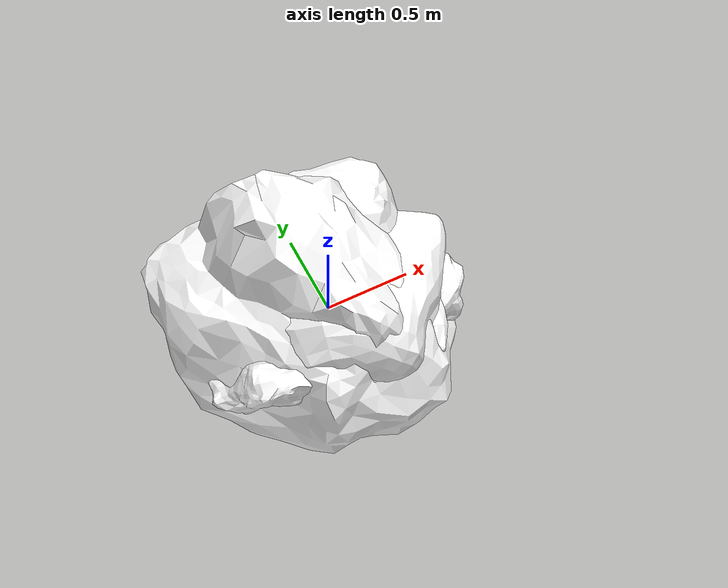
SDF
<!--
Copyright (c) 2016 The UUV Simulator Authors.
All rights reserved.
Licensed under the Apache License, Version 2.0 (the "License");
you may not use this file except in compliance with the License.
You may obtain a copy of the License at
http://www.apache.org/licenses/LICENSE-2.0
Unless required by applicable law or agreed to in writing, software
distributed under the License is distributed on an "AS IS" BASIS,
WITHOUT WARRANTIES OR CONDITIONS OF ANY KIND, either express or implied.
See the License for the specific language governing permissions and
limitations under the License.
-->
<sdf version="1.4">
 <world name="oceans_waves">
  <physics name="default_physics" default="true" type="ode">
   <max_step_size>0.002</max_step_size>
   <real_time_factor>1</real_time_factor>
   <real_time_update_rate>500</real_time_update_rate>
  </physics>
  <scene><ambient>0.01 0.01 0.01 1.0</ambient><shadows>1</shadows></scene>
  <gravity>0 0 -10</gravity>
  <spherical_coordinates>
   <longitude_deg>76.4334063</longitude_deg>
   <latitude_deg>-40.8458253</latitude_deg>
  </spherical_coordinates>
  <light type="directional" name="sun1">
   <pose>50 0 150 0 0 0</pose>
   <diffuse>1 1 1 1</diffuse>
   <specular>.1 .1 .1 1</specular>
   <direction>0.3 0.3 -1</direction>
   <cast_shadows>false</cast_shadows>
  </light>
  <light type="directional" name="sun_diffuse">
   <pose>-50 0 -150 0 0 0</pose>
   <diffuse>0.6 0.6 0.6 1</diffuse>
   <specular>0 0 0 1</specular>
   <direction>-0.3 -0.3 -1</direction>
   <cast_shadows>false</cast_shadows>
  </light>
  <include><name>rock1</name><uri>model://Rock01</uri></include>
  <include><name>rock2</name><uri>model://Rock02</uri></include>
  <include><name>rock3</name><uri>model://Rock03</uri></include>
  <include><name>rock4</name><uri>model://Rock04</uri></include>
  <include><name>rock5</name><uri>model://Rock05</uri></include>
  <include><name>rock6</name><uri>model://Rock06</uri></include>
  <include><name>rock7</name><uri>model://Rock07</uri></include>
  <plugin name="sc_interface" filename="libuuv_sc_ros_interface_plugin.so"/>
  <plugin name="data_generation_plugin" filename="libdata_generation_plugin.so"/>
 </world>
</sdf>

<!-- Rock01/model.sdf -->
<sdf version="1.6">
  <model name="Rock01">
    <static>true</static>
    <link name="base_link">
      <visual name= "Rock01_visual">
        <geometry>
          <mesh>
            <uri>model://Rock01/meshes/Rock01.dae</uri>
            <submesh>
              <name>Rock01</name>
              <center>false</center>
            </submesh>
          </mesh>
        </geometry>
        <material>
          <diffuse>1.0 1.0 1.0</diffuse>
          <specular>1.0 1.0 1.0</specular>
          <pbr>
            <metal>
              <albedo_map>model://Rock01/materials/textures/Rock_Albedo.png</albedo_map>
              <normal_map>model://Rock01/materials/textures/Rock_Normal.png</normal_map>
              <roughness_map>model://Rock01/materials/textures/Rock_Roughness.png</roughness_map>
            </metal>
          </pbr>
          <!-- fallback to script if no PBR support-->
          <script>
            <uri>model://Rock01/materials/scripts/</uri>
            <uri>model://Rock01/materials/textures/</uri>
            <name>UrbanTile/Rock_Diffuse</name>
          </script>
        </material>
      </visual>
      <collision name="collision">
        <geometry>
          <mesh>
            <pose>0 0 0 0 0 0</pose>
            <uri>model://Rock01/meshes/Rock01.dae</uri>
          </mesh>
        </geometry>
      </collision>
    </link>
  </model>
</sdf>

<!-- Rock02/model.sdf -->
<sdf version="1.6">
  <model name="Rock02">
    <static>true</static>
    <link name="base_link">
      <visual name= "Rock02_visual">
        <geometry>
          <mesh>
            <uri>model://Rock02/meshes/Rock02.dae</uri>
            <submesh>
              <name>Rock02</name>
              <center>false</center>
            </submesh>
          </mesh>
        </geometry>
        <material>
          <diffuse>1.0 1.0 1.0</diffuse>
          <specular>1.0 1.0 1.0</specular>
          <pbr>
            <metal>
              <albedo_map>model://Rock02/materials/textures/Rock_Albedo.png</albedo_map>
              <normal_map>model://Rock02/materials/textures/Rock_Normal.png</normal_map>
              <roughness_map>model://Rock02/materials/textures/Rock_Roughness.png</roughness_map>
            </metal>
          </pbr>
          <!-- fallback to script if no PBR support-->
          <script>
            <uri>model://Rock02/materials/scripts/</uri>
            <uri>model://Rock02/materials/textures/</uri>
            <name>UrbanTile/Rock_Diffuse</name>
          </script>
        </material>
      </visual>
      <collision name="collision">
        <geometry>
          <mesh>
            <pose>0 0 0 0 0 0</pose>
            <uri>model://Rock02/meshes/Rock02.dae</uri>
          </mesh>
        </geometry>
      </collision>
    </link>
  </model>
</sdf>

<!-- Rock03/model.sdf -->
<sdf version="1.6">
  <model name="Rock03">
    <static>true</static>
    <link name="base_link">
      <visual name= "Rock03_visual">
        <geometry>
          <mesh>
            <uri>model://Rock03/meshes/Rock03.dae</uri>
            <submesh>
              <name>Rock03</name>
              <center>false</center>
            </submesh>
          </mesh>
        </geometry>
        <material>
          <diffuse>1.0 1.0 1.0</diffuse>
          <specular>1.0 1.0 1.0</specular>
          <pbr>
            <metal>
              <albedo_map>model://Rock03/materials/textures/Rock_Albedo.png</albedo_map>
              <normal_map>model://Rock03/materials/textures/Rock_Normal.png</normal_map>
              <roughness_map>model://Rock03/materials/textures/Rock_Roughness.png</roughness_map>
            </metal>
          </pbr>
          <!-- fallback to script if no PBR support-->
          <script>
            <uri>model://Rock03/materials/scripts/</uri>
            <uri>model://Rock03/materials/textures/</uri>
            <name>UrbanTile/Rock_Diffuse</name>
          </script>
        </material>
      </visual>
      <collision name="collision">
        <geometry>
          <mesh>
            <pose>0 0 0 0 0 0</pose>
            <uri>model://Rock03/meshes/Rock03.dae</uri>
          </mesh>
        </geometry>
      </collision>
    </link>
  </model>
</sdf>

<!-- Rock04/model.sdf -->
<sdf version="1.6">
  <model name="Rock04">
    <static>true</static>
    <link name="base_link">
      <visual name= "Rock04_visual">
        <geometry>
          <mesh>
            <uri>model://Rock04/meshes/Rock04.dae</uri>
            <submesh>
              <name>Rock04</name>
              <center>false</center>
            </submesh>
          </mesh>
        </geometry>
        <material>
          <diffuse>1.0 1.0 1.0</diffuse>
          <specular>1.0 1.0 1.0</specular>
          <pbr>
            <metal>
              <albedo_map>model://Rock04/materials/textures/Rock_Albedo.png</albedo_map>
              <normal_map>model://Rock04/materials/textures/Rock_Normal.png</normal_map>
              <roughness_map>model://Rock04/materials/textures/Rock_Roughness.png</roughness_map>
            </metal>
          </pbr>
          <!-- fallback to script if no PBR support-->
          <script>
            <uri>model://Rock04/materials/scripts/</uri>
            <uri>model://Rock04/materials/textures/</uri>
            <name>UrbanTile/Rock_Diffuse</name>
          </script>
        </material>
      </visual>
      <collision name="collision">
        <geometry>
          <mesh>
            <pose>0 0 0 0 0 0</pose>
            <uri>model://Rock04/meshes/Rock04.dae</uri>
          </mesh>
        </geometry>
      </collision>
    </link>
  </model>
</sdf>

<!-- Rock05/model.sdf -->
<sdf version="1.6">
  <model name="Rock05">
    <static>true</static>
    <link name="base_link">
      <visual name= "Rock05_visual">
        <geometry>
          <mesh>
            <uri>model://Rock05/meshes/Rock05.dae</uri>
            <submesh>
              <name>Rock05</name>
              <center>false</center>
            </submesh>
          </mesh>
        </geometry>
        <material>
          <diffuse>1.0 1.0 1.0</diffuse>
          <specular>1.0 1.0 1.0</specular>
          <pbr>
            <metal>
              <albedo_map>model://Rock05/materials/textures/Rock_Albedo.png</albedo_map>
              <normal_map>model://Rock05/materials/textures/Rock_Normal.png</normal_map>
              <roughness_map>model://Rock05/materials/textures/Rock_Roughness.png</roughness_map>
            </metal>
          </pbr>
          <!-- fallback to script if no PBR support-->
          <script>
            <uri>model://Rock05/materials/scripts/</uri>
            <uri>model://Rock05/materials/textures/</uri>
            <name>UrbanTile/Rock_Diffuse</name>
          </script>
        </material>
      </visual>
      <collision name="collision">
        <geometry>
          <mesh>
            <pose>0 0 0 0 0 0</pose>
            <uri>model://Rock05/meshes/Rock05.dae</uri>
          </mesh>
        </geometry>
      </collision>
    </link>
  </model>
</sdf>

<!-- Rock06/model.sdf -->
<sdf version="1.6">
  <model name="Rock06">
    <static>true</static>
    <link name="base_link">
      <visual name= "Rock06_visual">
        <geometry>
          <mesh>
            <uri>model://Rock06/meshes/Rock06.dae</uri>
            <submesh>
              <name>Rock06</name>
              <center>false</center>
            </submesh>
          </mesh>
        </geometry>
        <material>
          <diffuse>1.0 1.0 1.0</diffuse>
          <specular>1.0 1.0 1.0</specular>
          <pbr>
            <metal>
              <albedo_map>model://Rock06/materials/textures/Rock_Albedo.png</albedo_map>
              <normal_map>model://Rock06/materials/textures/Rock_Normal.png</normal_map>
              <roughness_map>model://Rock06/materials/textures/Rock_Roughness.png</roughness_map>
            </metal>
          </pbr>
          <!-- fallback to script if no PBR support-->
          <script>
            <uri>model://Rock06/materials/scripts/</uri>
            <uri>model://Rock06/materials/textures/</uri>
            <name>UrbanTile/Rock_Diffuse</name>
          </script>
        </material>
      </visual>
      <collision name="collision">
        <geometry>
          <mesh>
            <pose>0 0 0 0 0 0</pose>
            <uri>model://Rock06/meshes/Rock06.dae</uri>
          </mesh>
        </geometry>
      </collision>
    </link>
  </model>
</sdf>

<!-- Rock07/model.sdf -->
<sdf version="1.6">
  <model name="Rock07">
    <static>true</static>
    <link name="base_link">
      <visual name= "Rock07_visual">
        <geometry>
          <mesh>
            <uri>model://Rock07/meshes/Rock07.dae</uri>
            <submesh>
              <name>Rock07</name>
              <center>false</center>
            </submesh>
          </mesh>
        </geometry>
        <material>
          <diffuse>1.0 1.0 1.0</diffuse>
          <specular>1.0 1.0 1.0</specular>
          <pbr>
            <metal>
              <albedo_map>model://Rock07/materials/textures/Rock_Albedo.png</albedo_map>
              <normal_map>model://Rock07/materials/textures/Rock_Normal.png</normal_map>
              <roughness_map>model://Rock07/materials/textures/Rock_Roughness.png</roughness_map>
            </metal>
          </pbr>
          <!-- fallback to script if no PBR support-->
          <script>
            <uri>model://Rock07/materials/scripts/</uri>
            <uri>model://Rock07/materials/textures/</uri>
            <name>UrbanTile/Rock_Diffuse</name>
          </script>
        </material>
      </visual>
      <collision name="collision">
        <geometry>
          <mesh>
            <pose>0 0 0 0 0 0</pose>
            <uri>model://Rock07/meshes/Rock07.dae</uri>
          </mesh>
        </geometry>
      </collision>
    </link>
  </model>
</sdf>
